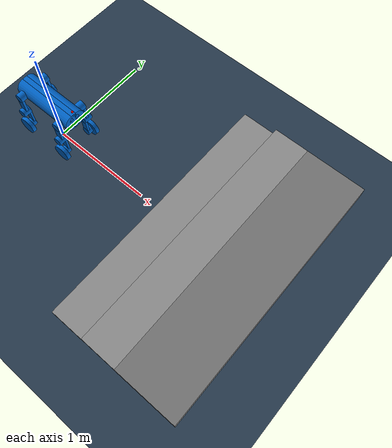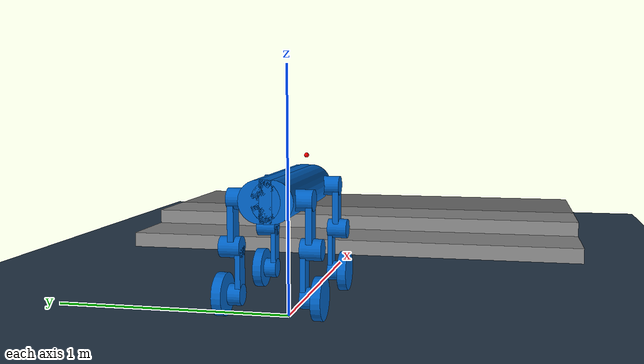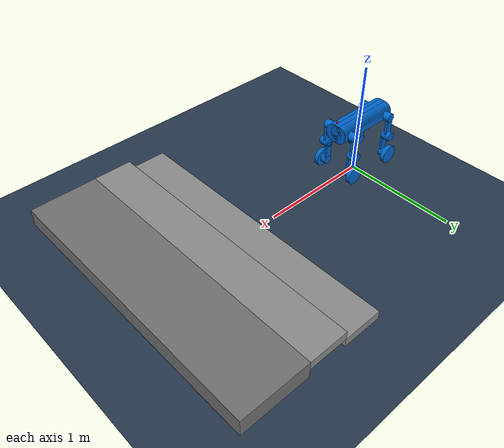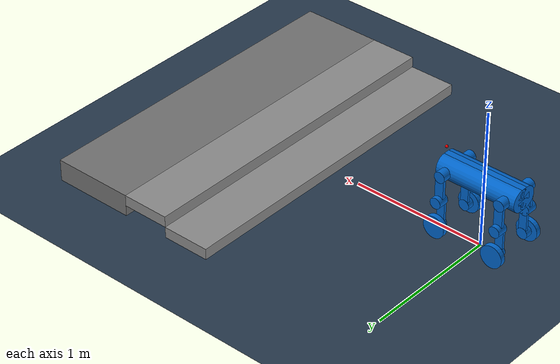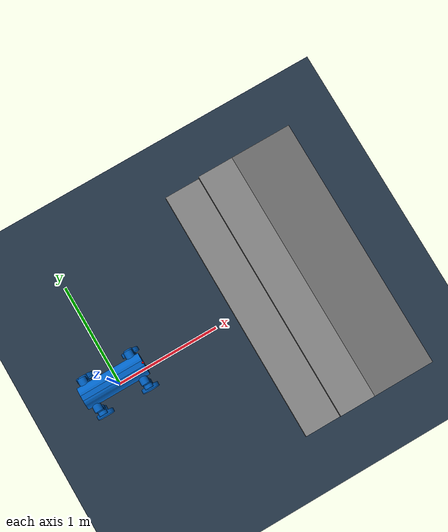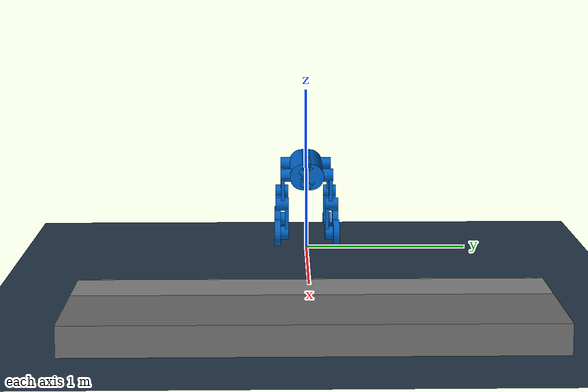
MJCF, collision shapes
<mujoco model="S10">
  <default>
      <default class="robot">
          <default class="motor">
              <joint/>
              <motor/>
          </default>
          <default class="visual">
              <geom material="default_material" contype="0" conaffinity="0" group="2"/>
          </default>
          <default class="collision">
              <geom material="collision_material" condim="3" contype="1" conaffinity="1" solref="0.005 1"
                    friction="1 0.01 0.001" density="0" group="1"/>
          </default>
      </default>
  </default>

  <compiler angle="radian" meshdir="../meshes/"/>
  <compiler autolimits="true"/>

  <asset>
    <material name="default_material" rgba="0.7 0.7 0.7 1"/>
    <material name="collision_material" rgba="0.0 0.4 0.8 0.2"/>
    <mesh name="base_link" file="base_link.STL"/>
    <mesh name="fl_hipx" file="fl_hipx.STL"/>
    <mesh name="fl_hipy" file="fl_hipy.STL"/>
    <mesh name="fl_knee" file="fl_knee.STL"/>
    <mesh name="fl_wheel" file="fl_wheel.STL"/>
    <mesh name="fr_hipx" file="fr_hipx.STL"/>
    <mesh name="fr_hipy" file="fr_hipy.STL"/>
    <mesh name="fr_knee" file="fr_knee.STL"/>
    <mesh name="fr_wheel" file="fr_wheel.STL"/>
    <mesh name="hl_hipx" file="hl_hipx.STL"/>
    <mesh name="hl_hipy" file="hl_hipy.STL"/>
    <mesh name="hl_knee" file="hl_knee.STL"/>
    <mesh name="hl_wheel" file="hl_wheel.STL"/>
    <mesh name="hr_hipx" file="hr_hipx.STL"/>
    <mesh name="hr_hipy" file="hr_hipy.STL"/>
    <mesh name="hr_knee" file="hr_knee.STL"/>
    <mesh name="hr_wheel" file="hr_wheel.STL"/>
    <texture name="texplane" type="2d" builtin="checker" rgb1=".2 .3 .4" rgb2=".1 0.15 0.2"
              width="512" height="512"/>
    <material name='MatPlane' reflectance='0.3' texture="texplane" texrepeat="1 1" texuniform="true"/>
  </asset>

  <worldbody>
    <!-- 灯光 -->
    <light directional="true" pos="-0.5 0.5 3" dir="0 0 -1"/>
    <geom name='floor' pos='0 0 0' size='100 100 .125' type='plane' material="MatPlane" condim='3'
          friction="1 0.01 0.01" group="0"/>

    <body name="base_link" pos="0 0.0 0.5" quat="1 0 0 0" childclass="robot">
      <freejoint name="floating_base"/>
      <inertial pos="-0.000512 0.057317 0.001182"
                quat="1 0 0 0"
                mass="8.023087" diaginertia="0.115559 0.171329 0.262028"/>
        <site name="imu_site" pos="0.0075 -0.0373 0.0556" size="0.005" rgba="1 0 0 1"/>
        <site name="base_site" pos="0 0 0" quat="1 0 0 0"/>
        <!-- Front RGB camera -->
        <camera name="front_camera" pos="0.32 0 0.12" quat="0.707107 0 -0.707107 0" fovy="70"/>
    <!-- Virtual LiDAR origin -->
<site name="lidar_site"
      pos="0.30 0 0.12"
      quat="1 0 0 0"
      size="0.01"
      rgba="1 0 0 1"/>

      <geom type="mesh" class="visual" mesh="base_link"/>
      <geom size="0.08 0.3" pos="0 0.024 0" quat="0.707107 0 0.707107 0" type="cylinder" class="collision"/>
      <geom size="0.08 0.3" pos="0 -0.024 0" quat="0.707107 0 0.707107 0" type="cylinder" class="collision"/>
      <geom size="0.08 0.024 0.3" quat="0.707107 0 0.707107 0" type="box" class="collision"/>
      <body name="fl_hipx" pos="0.2277 0.0574 0">
        <inertial pos="-0.005034 0.023524 4.6e-05" quat="0.25609 0.665262 -0.228203 0.663151" mass="0.627405" diaginertia="0.000415056 0.000391723 0.000223221"/>
        <joint name="fl_hipx_joint" pos="0 0 0" axis="-1 0 0" range="-0.6109 0.6109" actuatorfrcrange="-50 50"/>
        <geom type="mesh" class="visual" mesh="fl_hipx"/>
        <geom size="0.04 0.05" pos="0 0.054 0" quat="0.707107 0.707107 0 0" type="cylinder" class="collision"/>
        <body name="fl_hipy" pos="0 0.0779 0">
          <inertial pos="7.4e-05 0.018439 -0.129675" quat="0.701304 -0.0510428 0.0516391 0.709155" mass="0.885874" diaginertia="0.00454086 0.00445199 0.00030515"/>
          <joint name="fl_hipy_joint" pos="0 0 0" axis="0 -1 0" range="-2.5307 2.5307" actuatorfrcrange="-50 50"/>
          <geom type="mesh" class="visual" mesh="fl_hipy"/>
          <geom size="0.032 0.012 0.09" pos="0 0.012 -0.09" type="box" class="collision"/>
          <geom size="0.04 0.04" pos="0 0.018 -0.18" quat="0.707107 0.707107 0 0" type="cylinder" class="collision"/>
          <body name="fl_knee" pos="0 0 -0.18">
            <inertial pos="-3.2e-05 0.013504 -0.156308" quat="0.703786 -0.068447 0.068447 0.703786" mass="0.640283" diaginertia="0.0022296 0.002221 0.000193398"/>
            <joint name="fl_knee_joint" pos="0 0 0" axis="0 -1 0" range="-2.7227 2.7227" actuatorfrcrange="-50 50"/>
            <geom type="mesh" class="visual" mesh="fl_knee"/>
            <geom size="0.029 0.01 0.09" pos="0 -0.012 -0.09" type="box" class="collision"/>
            <geom size="0.04 0.025" pos="0 0.002 -0.18" quat="0.707107 0.707107 0 0" type="cylinder" class="collision"/>
            <body name="fl_wheel" pos="0 0.045891 -0.18">
              <inertial pos="-8e-06 0.001694 -5e-06" quat="0.707107 0 0 0.707107" mass="0.587952" diaginertia="0.002003 0.001059 0.001059"/>
              <joint name="fl_wheel_joint" pos="0 0 0" axis="0 -1 0" actuatorfrcrange="-14 14"/>
              <geom type="mesh" class="visual" mesh="fl_wheel"/>
              <geom size="0.081 0.0185" quat="0.707107 0.707107 0 0" type="cylinder" class="collision"/>
            </body>
          </body>
        </body>
      </body>
      <body name="fr_hipx" pos="0.2277 -0.0574 0">
        <inertial pos="-0.004831 -0.02349 0.000169" quat="-0.278522 0.675499 0.205833 0.650968" mass="0.626546" diaginertia="0.000415238 0.000395047 0.000218715"/>
        <joint name="fr_hipx_joint" pos="0 0 0" axis="-1 0 0" range="-0.6109 0.6109" actuatorfrcrange="-50 50"/>
        <geom type="mesh" class="visual" mesh="fr_hipx"/>
        <geom size="0.04 0.05" pos="0 -0.054 0" quat="0.707107 0.707107 0 0" type="cylinder" class="collision"/>
        <body name="fr_hipy" pos="0 -0.0779 0">
          <inertial pos="-7.4e-05 -0.018439 -0.129675" quat="0.701304 0.0510428 -0.0516391 0.709155" mass="0.885874" diaginertia="0.00454086 0.00445199 0.00030515"/>
          <joint name="fr_hipy_joint" pos="0 0 0" axis="0 -1 0" range="-2.5307 2.5307" actuatorfrcrange="-50 50"/>
          <geom type="mesh" class="visual" mesh="fr_hipy"/>
          <geom size="0.032 0.012 0.09" pos="0 -0.012 -0.09" type="box" class="collision"/>
          <geom size="0.04 0.04" pos="0 -0.018 -0.18" quat="0.707107 0.707107 0 0" type="cylinder" class="collision"/>
          <body name="fr_knee" pos="0 0 -0.18">
            <inertial pos="3.2e-05 -0.013504 -0.156308" quat="0.703786 0.068447 -0.068447 0.703786" mass="0.640283" diaginertia="0.0022296 0.002221 0.000193398"/>
            <joint name="fr_knee_joint" pos="0 0 0" axis="0 -1 0" range="-2.7227 2.7227" actuatorfrcrange="-50 50"/>
            <geom type="mesh" class="visual" mesh="fr_knee"/>
            <geom size="0.029 0.01 0.09" pos="0 0.012 -0.09" type="box" class="collision"/>
            <geom size="0.04 0.025" pos="0 -0.002 -0.18" quat="0.707107 0.707107 0 0" type="cylinder" class="collision"/>
            <body name="fr_wheel" pos="0 -0.045891 -0.18">
              <inertial pos="8e-06 -0.001694 5e-06" quat="0.707107 0 0 0.707107" mass="0.587952" diaginertia="0.002003 0.001059 0.001059"/>
              <joint name="fr_wheel_joint" pos="0 0 0" axis="0 -1 0" actuatorfrcrange="-14 14"/>
              <geom type="mesh" class="visual" mesh="fr_wheel"/>
              <geom size="0.081 0.0185" quat="0.707107 0.707107 0 0" type="cylinder" class="collision"/>
            </body>
          </body>
        </body>
      </body>
      <body name="hl_hipx" pos="-0.2277 0.0574 0">
        <inertial pos="0.004831 0.02349 0.000169" quat="-0.205833 0.650968 0.278522 0.675499" mass="0.626546" diaginertia="0.000415238 0.000395047 0.000218715"/>
        <joint name="hl_hipx_joint" pos="0 0 0" axis="-1 0 0" range="-0.6109 0.6109" actuatorfrcrange="-50 50"/>
        <geom type="mesh" class="visual" mesh="hl_hipx"/>
        <geom size="0.04 0.05" pos="0 0.054 0" quat="0.707107 0.707107 0 0" type="cylinder" class="collision"/>
        <body name="hl_hipy" pos="0 0.0779 0">
          <inertial pos="7.4e-05 0.018439 -0.129675" quat="0.701304 -0.0510428 0.0516391 0.709155" mass="0.885874" diaginertia="0.00454086 0.00445199 0.00030515"/>
          <joint name="hl_hipy_joint" pos="0 0 0" axis="0 -1 0" range="-2.5307 2.5307" actuatorfrcrange="-50 50"/>
          <geom type="mesh" class="visual" mesh="hl_hipy"/>
          <geom size="0.032 0.012 0.09" pos="0 0.012 -0.09" type="box" class="collision"/>
          <geom size="0.04 0.04" pos="0 0.018 -0.18" quat="0.707107 0.707107 0 0" type="cylinder" class="collision"/>
          <body name="hl_knee" pos="0 0 -0.18">
            <inertial pos="-3.2e-05 0.013504 -0.156308" quat="0.703786 -0.068447 0.068447 0.703786" mass="0.640283" diaginertia="0.0022296 0.002221 0.000193398"/>
            <joint name="hl_knee_joint" pos="0 0 0" axis="0 -1 0" range="-2.7227 2.7227" actuatorfrcrange="-50 50"/>
            <geom type="mesh" class="visual" mesh="hl_knee"/>
            <geom size="0.029 0.01 0.09" pos="0 -0.012 -0.09" type="box" class="collision"/>
            <geom size="0.04 0.025" pos="0 0.002 -0.18" quat="0.707107 0.707107 0 0" type="cylinder" class="collision"/>
            <body name="hl_wheel" pos="0 0.054891 -0.18">
              <inertial pos="-8e-06 0.001694 -5e-06" quat="0.707107 0 0 0.707107" mass="0.587952" diaginertia="0.002003 0.001059 0.001059"/>
              <joint name="hl_wheel_joint" pos="0 0 0" axis="0 -1 0" actuatorfrcrange="-14 14"/>
              <geom type="mesh" class="visual" mesh="hl_wheel"/>
              <geom size="0.081 0.0185" quat="0.707107 0.707107 0 0" type="cylinder" class="collision"/>
            </body>
          </body>
        </body>
      </body>
      <body name="hr_hipx" pos="-0.2277 -0.0574 0">
        <inertial pos="0.005034 -0.023524 4.6e-05" quat="0.228203 0.663151 -0.25609 0.665262" mass="0.627405" diaginertia="0.000415056 0.000391723 0.000223221"/>
        <joint name="hr_hipx_joint" pos="0 0 0" axis="-1 0 0" range="-0.6109 0.6109" actuatorfrcrange="-50 50"/>
        <geom type="mesh" class="visual" mesh="hr_hipx"/>
        <geom size="0.04 0.05" pos="0 -0.054 0" quat="0.707107 0.707107 0 0" type="cylinder" class="collision"/>
        <body name="hr_hipy" pos="0 -0.0779 0">
          <inertial pos="-7.4e-05 -0.018439 -0.129675" quat="0.701304 0.0510428 -0.0516391 0.709155" mass="0.885874" diaginertia="0.00454086 0.00445199 0.00030515"/>
          <joint name="hr_hipy_joint" pos="0 0 0" axis="0 -1 0" range="-2.5307 2.5307" actuatorfrcrange="-50 50"/>
          <geom type="mesh" class="visual" mesh="hr_hipy"/>
          <geom size="0.032 0.012 0.09" pos="0 -0.012 -0.09" type="box" class="collision"/>
          <geom size="0.04 0.04" pos="0 -0.018 -0.18" quat="0.707107 0.707107 0 0" type="cylinder" class="collision"/>
          <body name="hr_knee" pos="0 0 -0.18">
            <inertial pos="3.2e-05 -0.013504 -0.156308" quat="0.703786 0.068447 -0.068447 0.703786" mass="0.640283" diaginertia="0.0022296 0.002221 0.000193398"/>
            <joint name="hr_knee_joint" pos="0 0 0" axis="0 -1 0" range="-2.7227 2.7227" actuatorfrcrange="-50 50"/>
            <geom type="mesh" class="visual" mesh="hr_knee"/>
            <geom size="0.029 0.01 0.09" pos="0 0.012 -0.09" type="box" class="collision"/>
            <geom size="0.04 0.025" pos="0 -0.002 -0.18" quat="0.707107 0.707107 0 0" type="cylinder" class="collision"/>
            <body name="hr_wheel" pos="0 -0.045891 -0.18">
              <inertial pos="8e-06 -0.001694 5e-06" quat="0.707107 0 0 0.707107" mass="0.587952" diaginertia="0.002003 0.001059 0.001059"/>
              <joint name="hr_wheel_joint" pos="0 0 0" axis="0 -1 0" actuatorfrcrange="-14 14"/>
              <geom type="mesh" class="visual" mesh="hr_wheel"/>
              <geom size="0.081 0.0185" quat="0.707107 0.707107 0 0" type="cylinder" class="collision"/>
            </body>
          </body>
        </body>
      </body>
    </body>

<!-- S10_STAIR_TRAINING_START -->

        <geom
            name="training_stair_0"
            type="box"
            pos="1.375000 0 0.040000"
            size="0.175000 1.250000 0.040000"
            contype="1"
            conaffinity="1"
            friction="1.2 0.01 0.001"
            rgba="0.55 0.55 0.55 1"
        />

        <geom
            name="training_stair_1"
            type="box"
            pos="1.725000 0 0.120000"
            size="0.175000 1.250000 0.040000"
            contype="1"
            conaffinity="1"
            friction="1.2 0.01 0.001"
            rgba="0.55 0.55 0.55 1"
        />

        <geom
            name="training_stair_platform"
            type="box"
            pos="2.200000 0 0.080000"
            size="0.30 1.250000 0.080000"
            contype="1"
            conaffinity="1"
            friction="1.2 0.01 0.001"
            rgba="0.45 0.45 0.45 1"
        />

<!-- S10_STAIR_TRAINING_END -->
</worldbody>

    <actuator>
        <motor name="fl_hipx_joint" joint="fl_hipx_joint" ctrllimited="true" ctrlrange="-50.00 50.00" gear="1"/>
        <motor name="fl_hipy_joint" joint="fl_hipy_joint" ctrllimited="true" ctrlrange="-50.00 50.00" gear="1"/>
        <motor name="fl_knee_joint" joint="fl_knee_joint" ctrllimited="true" ctrlrange="-50.00 50.00" gear="1"/>
        <motor name="fl_wheel_joint" joint="fl_wheel_joint" ctrllimited="true" ctrlrange="-14.00 14.00" gear="1"/>
        <motor name="fr_hipx_joint" joint="fr_hipx_joint" ctrllimited="true" ctrlrange="-50.00 50.00" gear="1"/>
        <motor name="fr_hipy_joint" joint="fr_hipy_joint" ctrllimited="true" ctrlrange="-50.00 50.00" gear="1"/>
        <motor name="fr_knee_joint" joint="fr_knee_joint" ctrllimited="true" ctrlrange="-50.00 50.00" gear="1"/>
        <motor name="fr_wheel_joint" joint="fr_wheel_joint" ctrllimited="true" ctrlrange="-14.00 14.00" gear="1"/>
        <motor name="hl_hipx_joint" joint="hl_hipx_joint" ctrllimited="true" ctrlrange="-50.00 50.00" gear="1"/>
        <motor name="hl_hipy_joint" joint="hl_hipy_joint" ctrllimited="true" ctrlrange="-50.00 50.00" gear="1"/>
        <motor name="hl_knee_joint" joint="hl_knee_joint" ctrllimited="true" ctrlrange="-50.00 50.00" gear="1"/>
        <motor name="hl_wheel_joint" joint="hl_wheel_joint" ctrllimited="true" ctrlrange="-14.00 14.00" gear="1"/>
        <motor name="hr_hipx_joint" joint="hr_hipx_joint" ctrllimited="true" ctrlrange="-50.00 50.00" gear="1"/>
        <motor name="hr_hipy_joint" joint="hr_hipy_joint" ctrllimited="true" ctrlrange="-50.00 50.00" gear="1"/>
        <motor name="hr_knee_joint" joint="hr_knee_joint" ctrllimited="true" ctrlrange="-50.00 50.00" gear="1"/>
        <motor name="hr_wheel_joint" joint="hr_wheel_joint" ctrllimited="true" ctrlrange="-14.00 14.00" gear="1"/>
    </actuator>

    <contact>
        <exclude body1="base_link" body2="fl_hipx"/>
        <exclude body1="fl_hipx" body2="fl_hipy"/>
        <exclude body1="fl_hipy" body2="fl_knee"/>
        <exclude body1="fl_knee" body2="fl_wheel"/>

        <exclude body1="base_link" body2="fr_hipx"/>
        <exclude body1="fr_hipx" body2="fr_hipy"/>
        <exclude body1="fr_hipy" body2="fr_knee"/>
        <exclude body1="fr_knee" body2="fr_wheel"/>

        <exclude body1="base_link" body2="hl_hipx"/>
        <exclude body1="hl_hipx" body2="hl_hipy"/>
        <exclude body1="hl_hipy" body2="hl_knee"/>
        <exclude body1="hl_knee" body2="hl_wheel"/>

        <exclude body1="base_link" body2="hr_hipx"/>
        <exclude body1="hr_hipx" body2="hr_hipy"/>
        <exclude body1="hr_hipy" body2="hr_knee"/>
        <exclude body1="hr_knee" body2="hr_wheel"/>

    </contact>

    <sensor>
        <framequat name="base_quat" objtype="site" objname="base_site"/>
        <accelerometer site="imu_site"/>
        <gyro site="imu_site"/>
    </sensor>
</mujoco>
